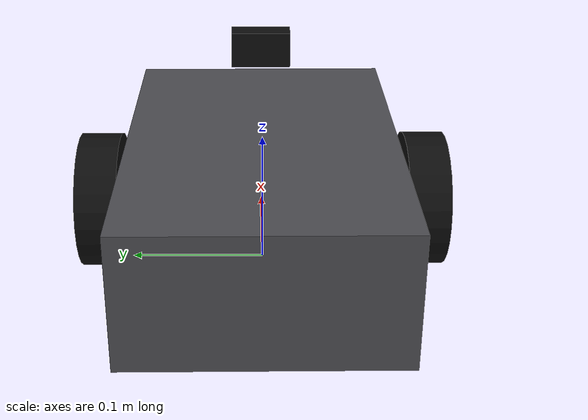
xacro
<?xml version="1.0"?>
<robot name="camo_robot" xmlns:xacro="http://www.ros.org/wiki/xacro">

  <!-- ===================== Properties ===================== -->
  <xacro:property name="chassis_length" value="0.30"/>
  <xacro:property name="chassis_width"  value="0.20"/>
  <xacro:property name="chassis_height" value="0.10"/>
  <xacro:property name="chassis_mass"   value="2.0"/>

  <xacro:property name="wheel_radius"   value="0.05"/>
  <xacro:property name="wheel_width"    value="0.03"/>
  <xacro:property name="wheel_mass"     value="0.2"/>
  <xacro:property name="wheel_separation" value="0.24"/>

  <xacro:property name="caster_radius"  value="0.025"/>

  <!-- ===================== base_footprint / base_link ===================== -->
  <link name="base_footprint"/>

  <joint name="base_joint" type="fixed">
    <parent link="base_footprint"/>
    <child link="base_link"/>
    <origin xyz="0 0 ${wheel_radius}" rpy="0 0 0"/>
  </joint>

  <link name="base_link">
    <visual>
      <geometry><box size="${chassis_length} ${chassis_width} ${chassis_height}"/></geometry>
      <material name="chassis_grey">
        <color rgba="0.3 0.3 0.32 1"/>
      </material>
    </visual>
    <collision>
      <geometry><box size="${chassis_length} ${chassis_width} ${chassis_height}"/></geometry>
    </collision>
    <inertial>
      <mass value="${chassis_mass}"/>
      <inertia ixx="0.0083" ixy="0.0" ixz="0.0" iyy="0.0166" iyz="0.0" izz="0.0208"/>
    </inertial>
  </link>

  <gazebo reference="base_link">
    <material>Gazebo/Grey</material>
  </gazebo>

  <!-- ===================== Wheel Macro ===================== -->
  <xacro:macro name="wheel" params="prefix reflect">
    <link name="${prefix}_wheel_link">
      <visual>
        <origin xyz="0 0 0" rpy="1.5708 0 0"/>
        <geometry><cylinder radius="${wheel_radius}" length="${wheel_width}"/></geometry>
        <material name="wheel_black"><color rgba="0.05 0.05 0.05 1"/></material>
      </visual>
      <collision>
        <origin xyz="0 0 0" rpy="1.5708 0 0"/>
        <geometry><cylinder radius="${wheel_radius}" length="${wheel_width}"/></geometry>
      </collision>
      <inertial>
        <mass value="${wheel_mass}"/>
        <inertia ixx="0.0001" ixy="0.0" ixz="0.0" iyy="0.0001" iyz="0.0" izz="0.0002"/>
      </inertial>
    </link>

    <joint name="${prefix}_wheel_joint" type="continuous">
      <parent link="base_link"/>
      <child link="${prefix}_wheel_link"/>
      <origin xyz="0 ${reflect * wheel_separation / 2} 0" rpy="0 0 0"/>
      <axis xyz="0 1 0"/>
    </joint>

    <gazebo reference="${prefix}_wheel_link">
      <material>Gazebo/Black</material>
      <mu1>1.0</mu1>
      <mu2>0.1</mu2>
    </gazebo>
  </xacro:macro>

  <xacro:wheel prefix="left"  reflect="1"/>
  <xacro:wheel prefix="right" reflect="-1"/>

  <!-- ===================== Passive Caster ===================== -->
  <link name="caster_link">
    <visual>
      <geometry><sphere radius="${caster_radius}"/></geometry>
      <material name="caster_grey"><color rgba="0.4 0.4 0.4 1"/></material>
    </visual>
    <collision>
      <geometry><sphere radius="${caster_radius}"/></geometry>
    </collision>
    <inertial>
      <mass value="0.05"/>
      <inertia ixx="0.00001" ixy="0.0" ixz="0.0" iyy="0.00001" iyz="0.0" izz="0.00001"/>
    </inertial>
  </link>

  <joint name="caster_joint" type="fixed">
    <parent link="base_link"/>
    <child link="caster_link"/>
    <origin xyz="${-chassis_length/2 + 0.03} 0 ${-chassis_height/2 + caster_radius}" rpy="0 0 0"/>
  </joint>

  <gazebo reference="caster_link">
    <material>Gazebo/Black</material>
    <mu1>0.001</mu1>
    <mu2>0.001</mu2>
  </gazebo>

  <!-- ===================== Camera ===================== -->
  <link name="camera_link">
    <visual>
      <geometry><box size="0.02 0.05 0.03"/></geometry>
      <material name="camera_black"><color rgba="0.05 0.05 0.05 1"/></material>
    </visual>
    <collision>
      <geometry><box size="0.02 0.05 0.03"/></geometry>
    </collision>
    <inertial>
      <mass value="0.05"/>
      <inertia ixx="0.00001" ixy="0.0" ixz="0.0" iyy="0.00001" iyz="0.0" izz="0.00001"/>
    </inertial>
  </link>

  <joint name="camera_joint" type="fixed">
    <parent link="base_link"/>
    <child link="camera_link"/>
    <origin xyz="${chassis_length/2} 0 ${chassis_height/2 + 0.02}" rpy="0 0 0"/>
  </joint>

  <gazebo reference="camera_link">
    <material>Gazebo/Red</material>
  </gazebo>

  <!-- ===================== Gazebo: Diff Drive Plugin ===================== -->
  <gazebo>
    <plugin filename="gz-sim-diff-drive-system" name="gz::sim::systems::DiffDrive">
      <left_joint>left_wheel_joint</left_joint>
      <right_joint>right_wheel_joint</right_joint>
      <wheel_separation>${wheel_separation}</wheel_separation>
      <wheel_radius>${wheel_radius}</wheel_radius>
      <odom_publish_frequency>30</odom_publish_frequency>
      <topic>cmd_vel</topic>
      <odom_topic>odom</odom_topic>
      <tf_topic>tf</tf_topic>
      <frame_id>odom</frame_id>
      <child_frame_id>base_footprint</child_frame_id>
    </plugin>
    <plugin filename="gz-sim-joint-state-publisher-system" name="gz::sim::systems::JointStatePublisher"/>
  </gazebo>

  <!-- ===================== Gazebo: Camera Sensor ===================== -->
  <gazebo reference="camera_link">
    <sensor name="camo_camera" type="camera">
      <camera>
        <horizontal_fov>1.396</horizontal_fov>
        <image>
          <width>640</width>
          <height>480</height>
          <format>R8G8B8</format>
        </image>
        <clip>
          <near>0.05</near>
          <far>20</far>
        </clip>
      </camera>
      <always_on>true</always_on>
      <update_rate>15</update_rate>
      <visualize>true</visualize>
      <topic>camera/image_raw</topic>
    </sensor>
  </gazebo>

</robot>
